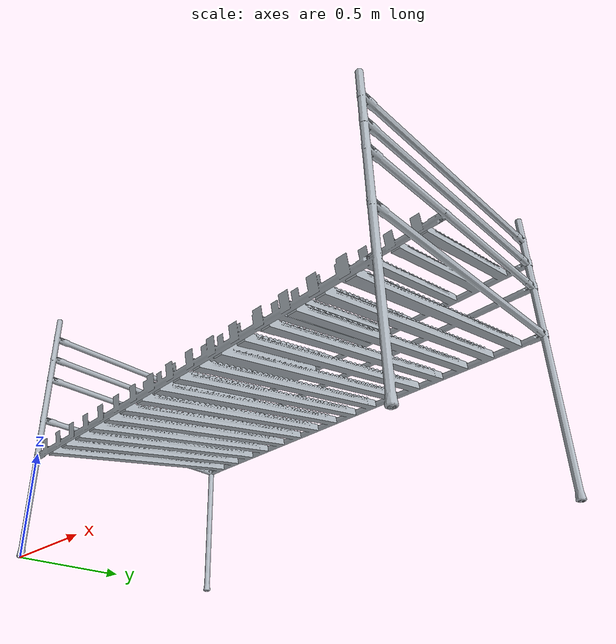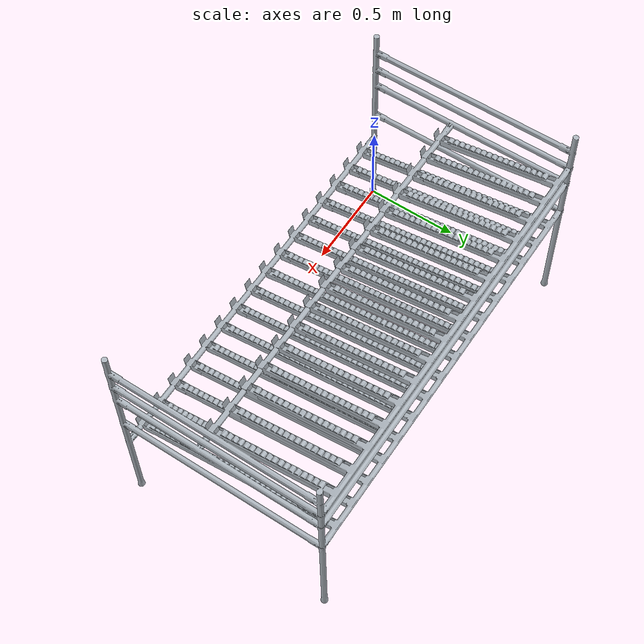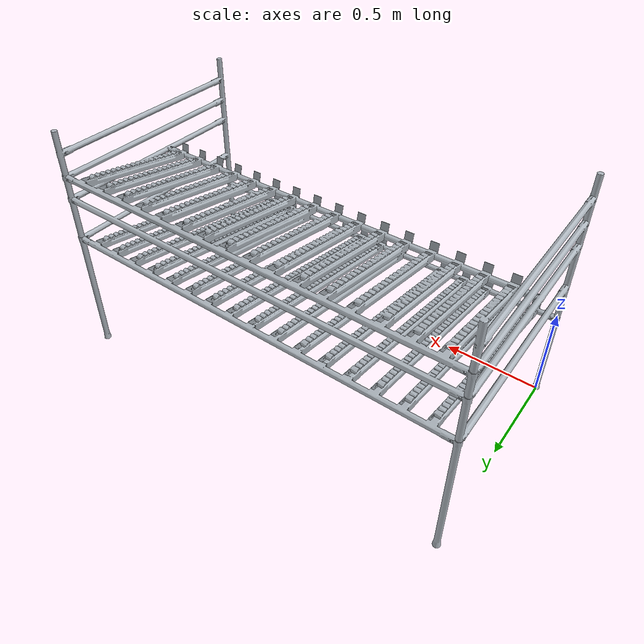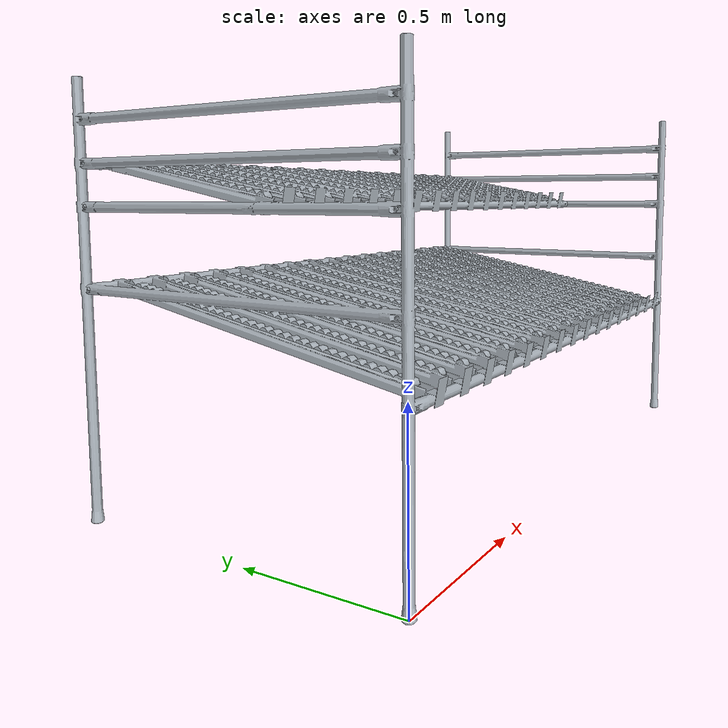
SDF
<sdf version="1.6">
  <model name="flow_rack">
    <static>true</static>
    <link name="new_link">
      <collision name="bottom_shelf">
        <pose>1.04635 0.54924 0.58629 0.00000 0.00000 0.00000</pose>
        <geometry>
          <mesh>
            <uri>model://flow_rack/meshes/Cube.003.stl</uri>
            <scale>1.00000 1.00000 1.00000</scale>
          </mesh>
        </geometry>
        <surface>
          <contact/>
          <friction>
            <ode>
              <mu>0.02</mu>
              <mu2>0.05</mu2>
              <fdir1>1 0 0</fdir1>
            </ode>
          </friction>
        </surface>
      </collision>

      <collision name="left_wall">
        <pose>-0.01057 0.53073 0.65905 0.00000 0.00000 0.00000</pose>
        <geometry>
          <mesh>
            <uri>model://flow_rack/meshes/Cube.001.stl</uri>
            <scale>1.00000 1.00000 1.00000</scale>
          </mesh>
        </geometry>
      </collision>

      <collision name="right_wall">
        <pose>2.08398 0.51983 0.65905 0.00000 0.00000 0.00000</pose>
        <geometry>
          <mesh>
            <uri>model://flow_rack/meshes/Cube.002.stl</uri>
            <scale>1.00000 1.00000 1.00000</scale>
          </mesh>
        </geometry>
      </collision>

      <collision name="stop_bottom">
        <pose>1.04635 -0.02510 0.50906 0.00000 0.00000 0.00000</pose>
        <geometry>
          <mesh>
            <uri>model://flow_rack/meshes/Cube.005.stl</uri>
            <scale>1.00000 1.00000 1.00000</scale>
          </mesh>
        </geometry>
      </collision>

      <collision name="stop_top">
        <pose>1.04635 0.41234 0.93874 0.00000 0.00000 0.00000</pose>
        <geometry>
          <mesh>
            <uri>model://flow_rack/meshes/Cube.006.stl</uri>
            <scale>1.00000 1.00000 1.00000</scale>
          </mesh>
        </geometry>
      </collision>

      <collision name="top_shelf">
        <pose>1.04635 0.76653 0.97885 0.00000 0.00000 0.00000</pose>
        <geometry>
          <mesh>
            <uri>model://flow_rack/meshes/Cube.004.stl</uri>
            <scale>1.00000 1.00000 1.00000</scale>
          </mesh>
        </geometry>
        <surface>
          <contact/>
          <friction>
            <ode>
              <mu>0.02</mu>
              <mu2>0.05</mu2>
              <fdir1>1 0 0</fdir1>
            </ode>
          </friction>
        </surface>
      </collision>

      <inertial>
        <pose>1.04314 0.45893 0.72184 0.00000 0.00000 0.00000</pose>
        <mass>48.00000</mass>
        <inertia>
          <ixx>4.90349</ixx>
          <ixy>0.10156</ixy>
          <ixz>-0.00969</ixz>
          <iyy>13.97633</iyy>
          <iyz>-1.21092</iyz>
          <izz>14.67138</izz>
        </inertia>
      </inertial>

      <visual name="shelf_visual">
        <pose>0.00000 0.00000 0.00000 0.00000 0.00000 0.00000</pose>
        <geometry>
          <mesh>
            <uri>model://flow_rack/meshes/Flow_rack.stl</uri>
            <scale>1.00000 1.00000 1.00000</scale>
          </mesh>
        </geometry>
        <material>
          <diffuse>0.67843 0.70980 0.74118 1.00000</diffuse>
          <specular>0.33725 0.35294 0.36863 0.49804</specular>
          <emissive>0.00000 0.00000 0.00000 1.00000</emissive>
        </material>
      </visual>
    </link>

    <plugin filename="gz-sim-pose-publisher-system" name="gz::sim::systems::PosePublisher">
      <publish_link_pose>true</publish_link_pose>
      <publish_sensor_pose>true</publish_sensor_pose>
      <publish_collision_pose>false</publish_collision_pose>
      <publish_visual_pose>false</publish_visual_pose>
      <publish_nested_model_pose>true</publish_nested_model_pose>
      <use_pose_vector_msg>false</use_pose_vector_msg>
      <static_publisher>true</static_publisher>
      <static_update_frequency>1</static_update_frequency>
    </plugin>

  </model>
</sdf>
